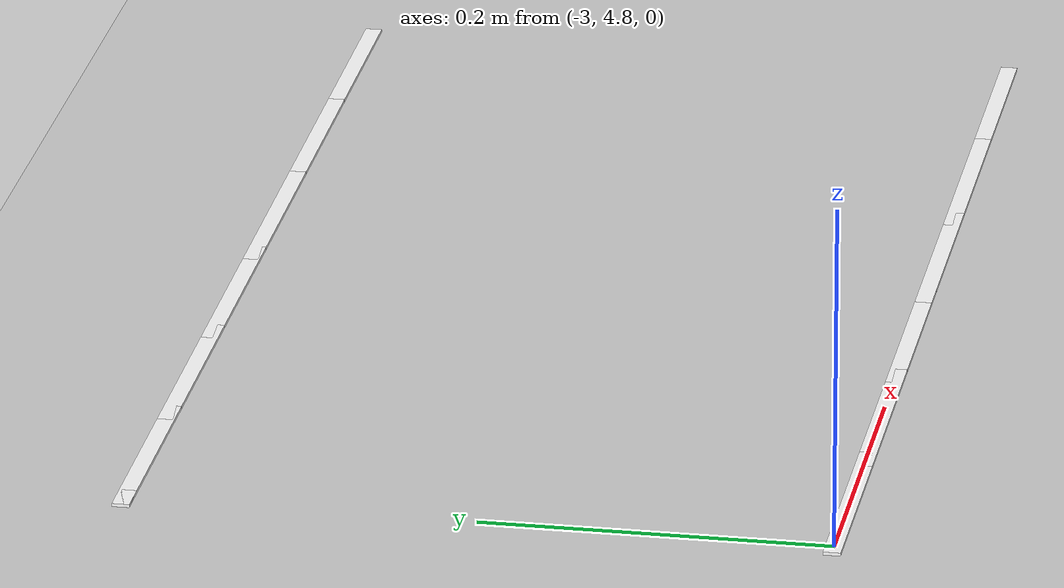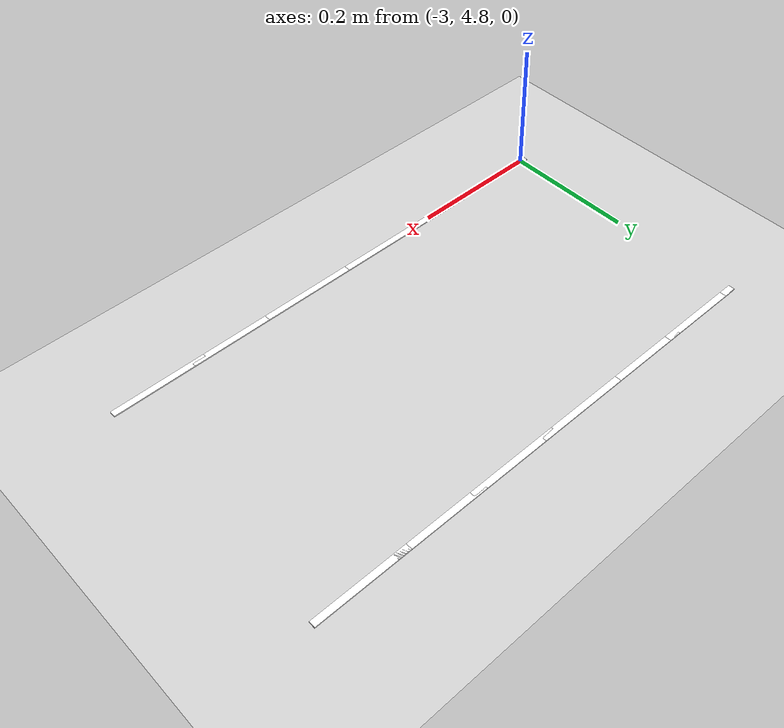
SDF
<sdf version="1.7">
 <world name="default">
  <model name="ground_plane">
   <static>1</static>
   <link name="link">
    <collision name="collision">
     <geometry><plane><normal>0 0 1</normal><size>100 100</size></plane></geometry>
     <surface>
      <contact><collide_bitmask>65535</collide_bitmask></contact>
      <friction><ode><mu>100</mu><mu2>50</mu2></ode></friction>
     </surface>
    </collision>
    <visual name="visual">
     <cast_shadows>0</cast_shadows>
     <geometry><plane><normal>0 0 1</normal><size>100 100</size></plane></geometry>
     <material>
      <script><uri>file://media/materials/scripts/gazebo.material</uri><name>Gazebo/Grey</name></script>
     </material>
    </visual>
   </link>
  </model>
  <model name="lane_line_left_243">
   <static>1</static>
   <link name="link">
    <pose>0 0 -0.004 0 -0 0</pose>
    <visual name="visual">
     <geometry><box><size>0.1424 0.01 0.01</size></box></geometry>
     <material><ambient>1 1 1 1</ambient><diffuse>1 1 1 1</diffuse></material>
    </visual>
    <collision name="collision"><geometry><box><size>0.1424 0.01 0.01</size></box></geometry></collision>
   </link>
   <pose>-2.32653 4.8 0 0 -0 3.14159</pose>
  </model>
  <model name="lane_line_right_243">
   <static>1</static>
   <link name="link">
    <pose>0 0 -0.004 0 -0 0</pose>
    <visual name="visual">
     <geometry><box><size>0.1424 0.01 0.01</size></box></geometry>
     <material><ambient>1 1 1 1</ambient><diffuse>1 1 1 1</diffuse></material>
    </visual>
    <collision name="collision"><geometry><box><size>0.1424 0.01 0.01</size></box></geometry></collision>
   </link>
   <pose>-2.32653 5.2 0 0 -0 3.14159</pose>
  </model>
  <model name="lane_line_left_244">
   <static>1</static>
   <link name="link">
    <pose>0 0 -0.004 0 -0 0</pose>
    <visual name="visual">
     <geometry><box><size>0.1424 0.01 0.01</size></box></geometry>
     <material><ambient>1 1 1 1</ambient><diffuse>1 1 1 1</diffuse></material>
    </visual>
    <collision name="collision"><geometry><box><size>0.1424 0.01 0.01</size></box></geometry></collision>
   </link>
   <pose>-2.44898 4.8 0 0 -0 3.14159</pose>
  </model>
  <model name="lane_line_right_244">
   <static>1</static>
   <link name="link">
    <pose>0 0 -0.004 0 -0 0</pose>
    <visual name="visual">
     <geometry><box><size>0.1424 0.01 0.01</size></box></geometry>
     <material><ambient>1 1 1 1</ambient><diffuse>1 1 1 1</diffuse></material>
    </visual>
    <collision name="collision"><geometry><box><size>0.1424 0.01 0.01</size></box></geometry></collision>
   </link>
   <pose>-2.44898 5.2 0 0 -0 3.14159</pose>
  </model>
  <model name="lane_line_left_245">
   <static>1</static>
   <link name="link">
    <pose>0 0 -0.004 0 -0 0</pose>
    <visual name="visual">
     <geometry><box><size>0.1424 0.01 0.01</size></box></geometry>
     <material><ambient>1 1 1 1</ambient><diffuse>1 1 1 1</diffuse></material>
    </visual>
    <collision name="collision"><geometry><box><size>0.1424 0.01 0.01</size></box></geometry></collision>
   </link>
   <pose>-2.57143 4.8 0 0 -0 3.14159</pose>
  </model>
  <model name="lane_line_right_245">
   <static>1</static>
   <link name="link">
    <pose>0 0 -0.004 0 -0 0</pose>
    <visual name="visual">
     <geometry><box><size>0.1424 0.01 0.01</size></box></geometry>
     <material><ambient>1 1 1 1</ambient><diffuse>1 1 1 1</diffuse></material>
    </visual>
    <collision name="collision"><geometry><box><size>0.1424 0.01 0.01</size></box></geometry></collision>
   </link>
   <pose>-2.57143 5.2 0 0 -0 3.14159</pose>
  </model>
  <model name="lane_line_left_246">
   <static>1</static>
   <link name="link">
    <pose>0 0 -0.004 0 -0 0</pose>
    <visual name="visual">
     <geometry><box><size>0.1424 0.01 0.01</size></box></geometry>
     <material><ambient>1 1 1 1</ambient><diffuse>1 1 1 1</diffuse></material>
    </visual>
    <collision name="collision"><geometry><box><size>0.1424 0.01 0.01</size></box></geometry></collision>
   </link>
   <pose>-2.69388 4.8 0 0 -0 3.14159</pose>
  </model>
  <model name="lane_line_right_246">
   <static>1</static>
   <link name="link">
    <pose>0 0 -0.004 0 -0 0</pose>
    <visual name="visual">
     <geometry><box><size>0.1424 0.01 0.01</size></box></geometry>
     <material><ambient>1 1 1 1</ambient><diffuse>1 1 1 1</diffuse></material>
    </visual>
    <collision name="collision"><geometry><box><size>0.1424 0.01 0.01</size></box></geometry></collision>
   </link>
   <pose>-2.69388 5.2 0 0 -0 3.14159</pose>
  </model>
  <model name="lane_line_left_247">
   <static>1</static>
   <link name="link">
    <pose>0 0 -0.004 0 -0 0</pose>
    <visual name="visual">
     <geometry><box><size>0.1424 0.01 0.01</size></box></geometry>
     <material><ambient>1 1 1 1</ambient><diffuse>1 1 1 1</diffuse></material>
    </visual>
    <collision name="collision"><geometry><box><size>0.1424 0.01 0.01</size></box></geometry></collision>
   </link>
   <pose>-2.81633 4.8 0 0 -0 3.14159</pose>
  </model>
  <model name="lane_line_right_247">
   <static>1</static>
   <link name="link">
    <pose>0 0 -0.004 0 -0 0</pose>
    <visual name="visual">
     <geometry><box><size>0.1424 0.01 0.01</size></box></geometry>
     <material><ambient>1 1 1 1</ambient><diffuse>1 1 1 1</diffuse></material>
    </visual>
    <collision name="collision"><geometry><box><size>0.1424 0.01 0.01</size></box></geometry></collision>
   </link>
   <pose>-2.81633 5.2 0 0 -0 3.14159</pose>
  </model>
  <model name="lane_line_left_248">
   <static>1</static>
   <link name="link">
    <pose>0 0 -0.004 0 -0 0</pose>
    <visual name="visual">
     <geometry><box><size>0.1424 0.01 0.01</size></box></geometry>
     <material><ambient>1 1 1 1</ambient><diffuse>1 1 1 1</diffuse></material>
    </visual>
    <collision name="collision"><geometry><box><size>0.1424 0.01 0.01</size></box></geometry></collision>
   </link>
   <pose>-2.93878 4.8 0 0 -0 3.14159</pose>
  </model>
  <model name="lane_line_right_248">
   <static>1</static>
   <link name="link">
    <pose>0 0 -0.004 0 -0 0</pose>
    <visual name="visual">
     <geometry><box><size>0.1424 0.01 0.01</size></box></geometry>
     <material><ambient>1 1 1 1</ambient><diffuse>1 1 1 1</diffuse></material>
    </visual>
    <collision name="collision"><geometry><box><size>0.1424 0.01 0.01</size></box></geometry></collision>
   </link>
   <pose>-2.93878 5.2 0 0 -0 3.14159</pose>
  </model>
  <model name="lane_line_left_249">
   <static>1</static>
   <link name="link">
    <pose>0 0 -0.004 0 -0 0</pose>
    <visual name="visual">
     <geometry><box><size>0.02 0.01 0.01</size></box></geometry>
     <material><ambient>1 1 1 1</ambient><diffuse>1 1 1 1</diffuse></material>
    </visual>
    <collision name="collision"><geometry><box><size>0.02 0.01 0.01</size></box></geometry></collision>
   </link>
   <pose>-3 5.2 0 0 -0 0</pose>
  </model>
 </world>
</sdf>
